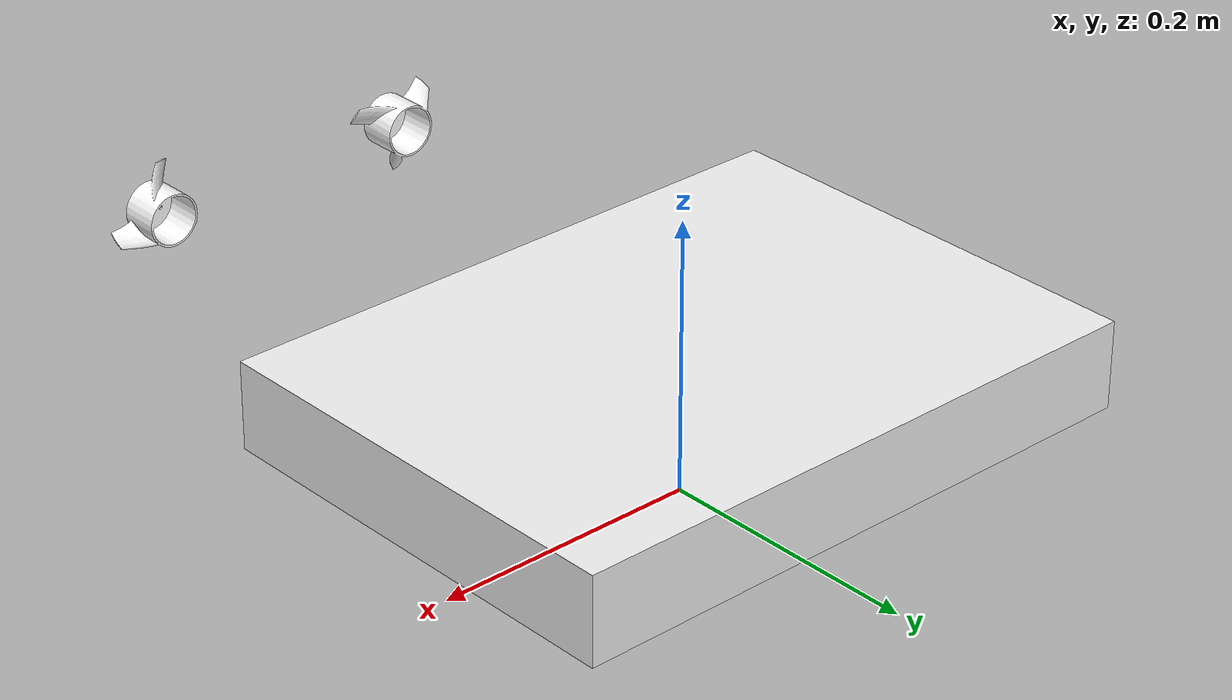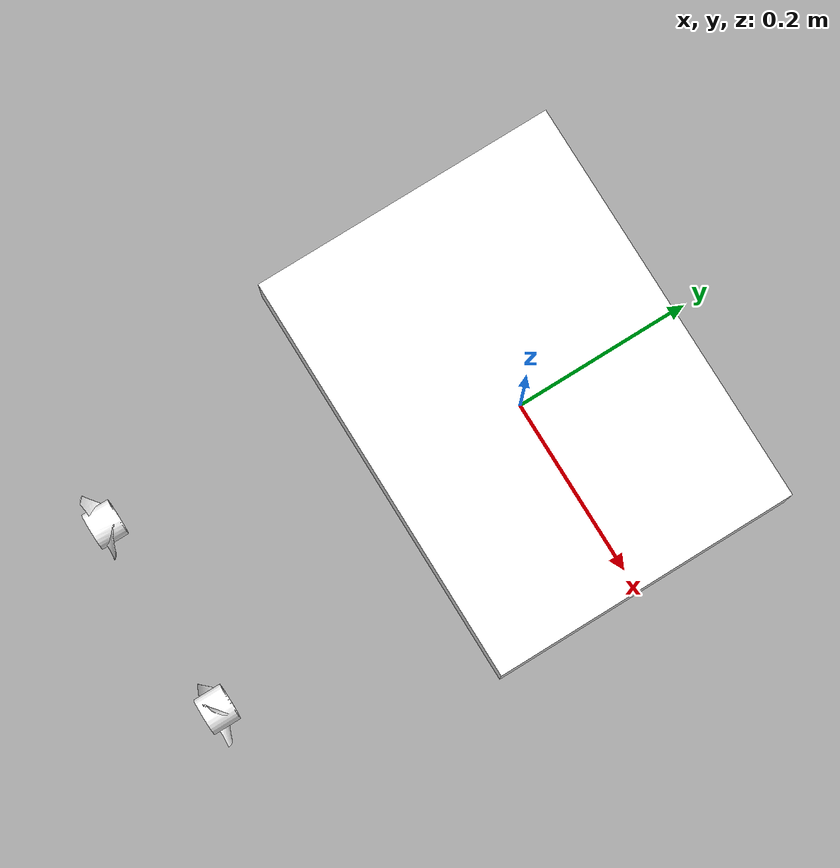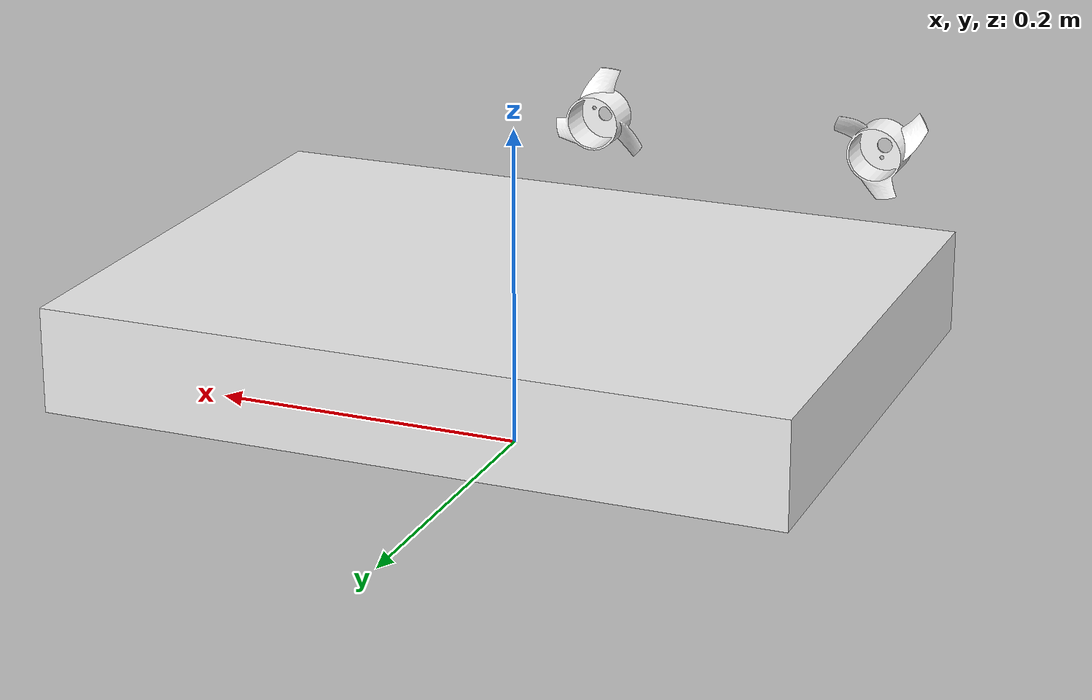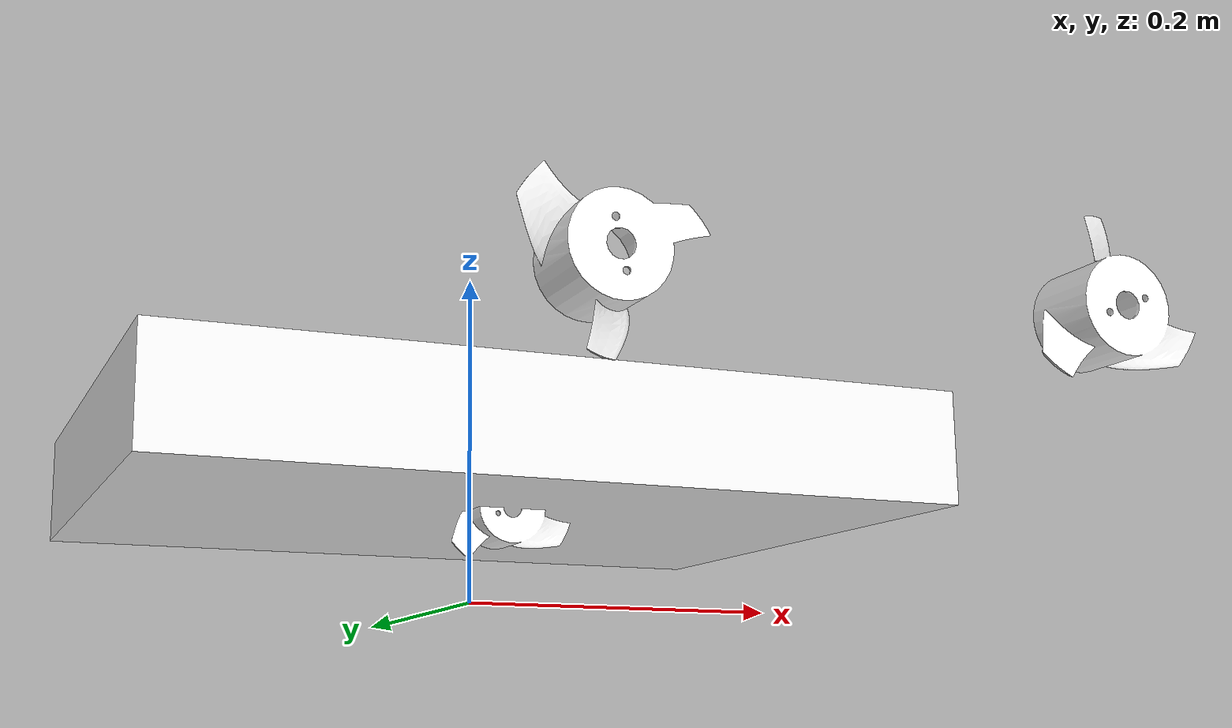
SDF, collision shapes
<sdf version='1.9'>
  <model name='muralone'>
    <link name='base_link'>
      <inertial>
        <pose>0.0 0.0 0.011 0 0 0</pose>
        <mass>10.0</mass>
        <inertia>
          <ixx>0.099</ixx>
          <ixy>0</ixy>
          <ixz>0</ixz>
          <iyy>0.178</iyy>
          <iyz>0</iyz>
          <izz>0.269</izz>
      </inertia>
      </inertial>
      <!-- Collision volume * fluid_density == displaced mass, used by BuoyancyPlugin -->
      <collision name="base_link_collision">
        <pose>0.0 0.0 0.08 0 0 0</pose>
        <geometry>
          <box>
            <size>0.457 0.338 0.065</size>
          </box>
        </geometry>
      </collision>
      <visual name='base_link_visual'>
        <pose>0 0 0 0 0 0</pose>
        <geometry>
          <mesh>
            <scale>1 1 1</scale>
            <uri>model://muralone/meshes/base_link.STL</uri>
          </mesh>
        </geometry>
        <material>
          <diffuse>0.941174984 0.941174984 0.941174984 1</diffuse>
          <ambient>0.941174984 0.941174984 0.941174984 1</ambient>
        </material>
      </visual>
      <!-- IMU sensor gyro and accel data will be sent to ArduSub -->
      <sensor name="imu_sensor" type="imu">
        <!-- Transform from the Gazebo body frame (x-forward, y-left, z-up)
             to the ArduPilot body frame (x-forward, y-right, z-down) -->
        <pose>0 0 0 3.142 0 0</pose>
        <always_on>1</always_on>
        <update_rate>1000.0</update_rate>
      </sensor>
    </link>
    <!-- Hydrodynamics plugin -->
    <plugin
        filename="gz-sim-hydrodynamics-system"
        name="gz::sim::systems::Hydrodynamics">
      <link_name>base_link</link_name>
      <water_density>998.0</water_density>
      <!-- Added mass: -->
      <xDotU>0</xDotU>
      <yDotV>0</yDotV>
      <zDotW>0</zDotW>
      <kDotP>0</kDotP>
      <mDotQ>0</mDotQ>
      <nDotR>0</nDotR>
      <!-- First order stability derivative: -->
      <xU>0</xU>
      <yV>0</yV>
      <zW>0</zW>
      <kP>0</kP>
      <mQ>0</mQ>
      <nR>0</nR>
      <!-- Second order stability derivative: -->
      <xUabsU>-33.732</xUabsU>
      <yVabsV>-54.16</yVabsV>
      <zWabsW>-73.225</zWabsW>
      <kPabsP>-3.992</kPabsP>
      <mQabsQ>-3.992</mQabsQ>
      <nRabsR>-3.992</nRabsR>
    </plugin>
  <joint name='thruster_1_joint' type='revolute'>
      <pose relative_to='base_link'>0.10761999999999999 -0.43753999999999998 0.080000000000000002 0 0 0</pose>
      <parent>base_link</parent>
      <child>thruster_1</child>
      <axis>
        <xyz>0 1 0</xyz>
        <limit>
          <lower>-inf</lower>
          <upper>inf</upper>
        </limit>
        <dynamics>
          <spring_reference>0</spring_reference>
          <spring_stiffness>0</spring_stiffness>
        </dynamics>
      </axis>
    </joint>
    <link name='thruster_1'>
      <pose relative_to='thruster_1_joint'>0 0 0 0 0 0</pose>
      <inertial>
        <pose>-1.2202999999999999e-07 0.012703000000000001 -9.803899999999999e-07 0 0 0</pose>
        <mass>0.0079001000000000002</mass>
        <inertia>
          <ixx>2.2531000000000001e-06</ixx>
          <ixy>-1.6611e-11</ixy>
          <ixz>4.9965000000000003e-10</ixz>
          <iyy>3.2816999999999999e-06</iyy>
          <iyz>1.9692e-11</iyz>
          <izz>2.2523999999999998e-06</izz>
        </inertia>
      </inertial>
      <collision name='thruster_1_collision'>
        <pose>0 0 0 0 0 0</pose>
        <geometry>
          <mesh>
            <scale>1 1 1</scale>
            <uri>model://muralone/meshes/thruster_1.STL</uri>
          </mesh>
        </geometry>
      </collision>
      <visual name='thruster_1_visual'>
        <pose>0 0 0 0 0 0</pose>
        <geometry>
          <mesh>
            <scale>1 1 1</scale>
            <uri>model://muralone/meshes/thruster_1.STL</uri>
          </mesh>
        </geometry>
        <material>
          <diffuse>1 1 1 1</diffuse>
          <ambient>1 1 1 1</ambient>
        </material>
      </visual>
    </link>
    <joint name='thruster_2_joint' type='revolute'>
      <pose relative_to='base_link'>-0.10761999999999999 -0.43753999999999998 0.080000000000000002 0 0 0</pose>
      <parent>base_link</parent>
      <child>thruster_2</child>
      <axis>
        <xyz>0 1 0</xyz>
        <limit>
          <lower>-inf</lower>
          <upper>inf</upper>
        </limit>
        <dynamics>
          <spring_reference>0</spring_reference>
          <spring_stiffness>0</spring_stiffness>
        </dynamics>
      </axis>
    </joint>
    <link name='thruster_2'>
      <pose relative_to='thruster_2_joint'>0 0 0 0 0 0</pose>
      <inertial>
        <pose>-2.5591000000000002e-06 0.012699999999999999 2.4545999999999998e-07 0 0 0</pose>
        <mass>0.0078949999999999992</mass>
        <inertia>
          <ixx>2.2504000000000001e-06</ixx>
          <ixy>2.5519000000000001e-11</ixy>
          <ixz>4.6165999999999999e-10</ixz>
          <iyy>3.2791999999999999e-06</iyy>
          <iyz>1.4283e-11</iyz>
          <izz>2.2523e-06</izz>
        </inertia>
      </inertial>
      <collision name='thruster_2_collision'>
        <pose>0 0 0 0 0 0</pose>
        <geometry>
          <mesh>
            <scale>1 1 1</scale>
            <uri>model://muralone/meshes/thruster_2.STL</uri>
          </mesh>
        </geometry>
      </collision>
      <visual name='thruster_2_visual'>
        <pose>0 0 0 0 0 0</pose>
        <geometry>
          <mesh>
            <scale>1 1 1</scale>
            <uri>model://muralone/meshes/thruster_2.STL</uri>
          </mesh>
        </geometry>
        <material>
          <diffuse>1 1 1 1</diffuse>
          <ambient>1 1 1 1</ambient>
        </material>
      </visual>
    </link>
    <joint name='thruster_3_joint' type='revolute'>
      <pose relative_to='base_link'>0 -0.069955000000000003 0.047731000000000003 0 0 0</pose>
      <parent>base_link</parent>
      <child>thruster_3</child>
      <axis>
        <xyz>0 0 -1</xyz>
        <limit>
          <lower>-inf</lower>
          <upper>inf</upper>
        </limit>
        <dynamics>
          <spring_reference>0</spring_reference>
          <spring_stiffness>0</spring_stiffness>
        </dynamics>
      </axis>
    </joint>
    <link name='thruster_3'>
      <pose relative_to='thruster_3_joint'>0 0 0 0 0 0</pose>
      <inertial>
        <pose>-2.3776999999999999e-07 -1.8733999999999999e-06 0.012699999999999999 0 0 0</pose>
        <mass>0.0078946999999999993</mass>
        <inertia>
          <ixx>2.2521e-06</ixx>
          <ixy>-2.0276000000000001e-10</ixy>
          <ixz>4.0690999999999999e-11</ixz>
          <iyy>2.2504999999999999e-06</iyy>
          <iyz>4.7325999999999998e-11</iyz>
          <izz>3.2791999999999999e-06</izz>
        </inertia>
      </inertial>
      <collision name='thruster_3_collision'>
        <pose>0 0 0 0 0 0</pose>
        <geometry>
          <mesh>
            <scale>1 1 1</scale>
            <uri>model://muralone/meshes/thruster_3.STL</uri>
          </mesh>
        </geometry>
      </collision>
      <visual name='thruster_3_visual'>
        <pose>0 0 0 0 0 0</pose>
        <geometry>
          <mesh>
            <scale>1 1 1</scale>
            <uri>model://muralone/meshes/thruster_3.STL</uri>
          </mesh>
        </geometry>
        <material>
          <diffuse>1 1 1 1</diffuse>
          <ambient>1 1 1 1</ambient>
        </material>
      </visual>
    </link>
    <!-- Thruster Plugins -->
    <plugin
        filename="gz-sim-thruster-system"
        name="gz::sim::systems::Thruster">
      <namespace>muralone</namespace>
      <joint_name>thruster_1_joint</joint_name>
      <!-- Reverse spin to balance torque -->
      <thrust_coefficient>-0.02</thrust_coefficient>
      <propeller_diameter>0.1</propeller_diameter>
      <velocity_control>true</velocity_control>
      <use_angvel_cmd>False</use_angvel_cmd>
    </plugin>

    <plugin
        filename="gz-sim-thruster-system"
        name="gz::sim::systems::Thruster">
      <namespace>muralone</namespace>
      <joint_name>thruster_2_joint</joint_name>
      <thrust_coefficient>0.02</thrust_coefficient>
      <fluid_density>998.0</fluid_density>
      <propeller_diameter>0.1</propeller_diameter>
      <velocity_control>true</velocity_control>
      <use_angvel_cmd>False</use_angvel_cmd>
    </plugin>

    <plugin
        filename="gz-sim-thruster-system"
        name="gz::sim::systems::Thruster">
      <namespace>muralone</namespace>
      <joint_name>thruster_3_joint</joint_name>
      <thrust_coefficient>0.02</thrust_coefficient>
      <fluid_density>998.0</fluid_density>
      <propeller_diameter>0.1</propeller_diameter>
      <velocity_control>true</velocity_control>
      <use_angvel_cmd>False</use_angvel_cmd>
    </plugin>

<plugin name="ArduPilotPlugin" filename="libArduPilotPlugin.so">
      <!-- Port settings -->
      <fdm_addr>127.0.0.1</fdm_addr>
      <fdm_port_in>9002</fdm_port_in>
      <connectionTimeoutMaxCount>5</connectionTimeoutMaxCount>
      <lock_step>1</lock_step>

      <!-- Transform from the Gazebo body frame (x-forward, y-left, z-up)
           to the ArduPilot body frame (x-forward, y-right, z-down) -->
      <modelXYZToAirplaneXForwardZDown>0 0 0 3.142 0 0</modelXYZToAirplaneXForwardZDown>

      <!-- Transform from the Gazebo world frame (ENU)
           to the ArduPilot world frame (NED) -->
      <gazeboXYZToNED>0 0 0 3.142 0 1.571</gazeboXYZToNED>

      <!-- Sensors -->
      <imuName>imu_sensor</imuName>

      <!-- Thrusters -->
      <control channel="0">
        <jointName>thruster_1_joint</jointName>
        <servo_min>1100</servo_min>
        <servo_max>1900</servo_max>
        <type>COMMAND</type>
        <cmd_topic>/model/muralone/joint/thruster_1_joint/cmd_thrust</cmd_topic>
        <offset>-0.5</offset>
        <multiplier>100</multiplier>
      </control>
      <control channel="1">
        <jointName>thruster_2_joint</jointName>
        <servo_min>1100</servo_min>
        <servo_max>1900</servo_max>
        <type>COMMAND</type>
        <cmd_topic>/model/muralone/joint/thruster_2_joint/cmd_thrust</cmd_topic>
        <offset>-0.5</offset>
        <multiplier>100</multiplier>
      </control>
      <control channel="2">
        <jointName>thruster_3_joint</jointName>
        <servo_min>1100</servo_min>
        <servo_max>1900</servo_max>
        <type>COMMAND</type>
        <cmd_topic>/model/muralone/joint/thruster_3_joint/cmd_thrust</cmd_topic>
        <offset>-0.5</offset>
        <multiplier>100</multiplier>
      </control>
    </plugin>
  </model>
</sdf>
